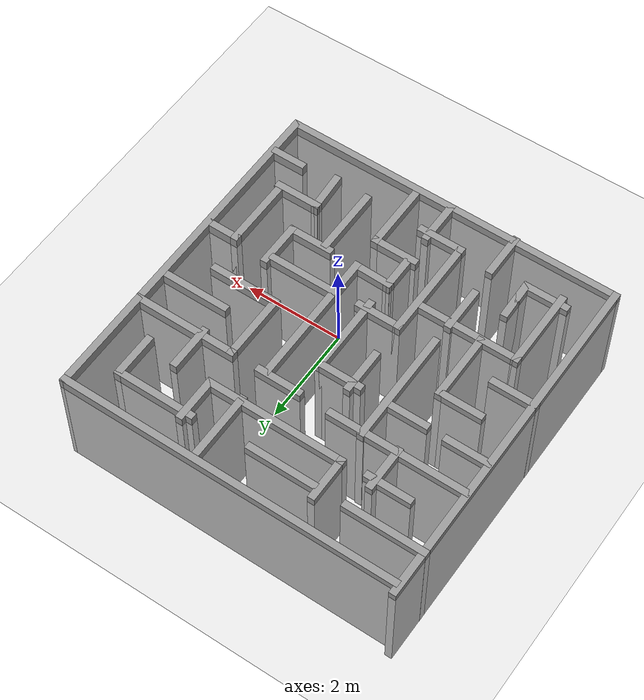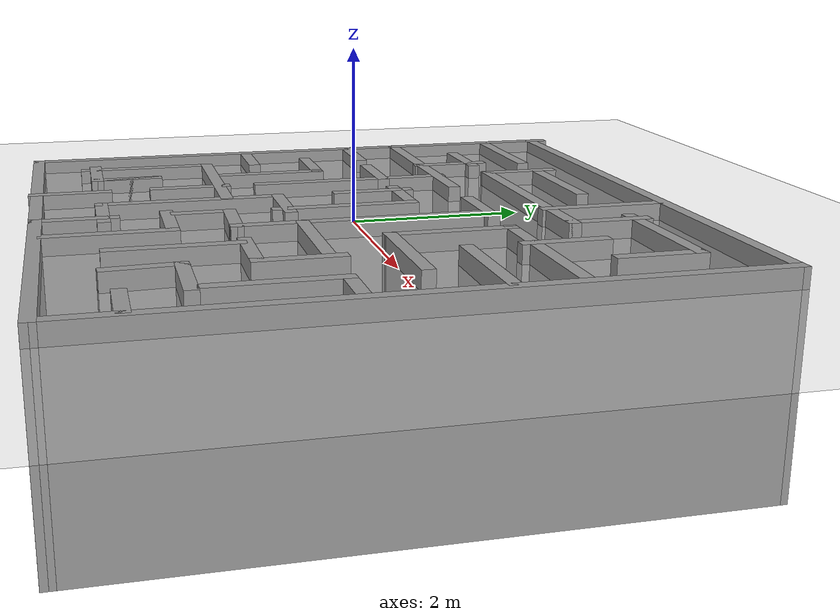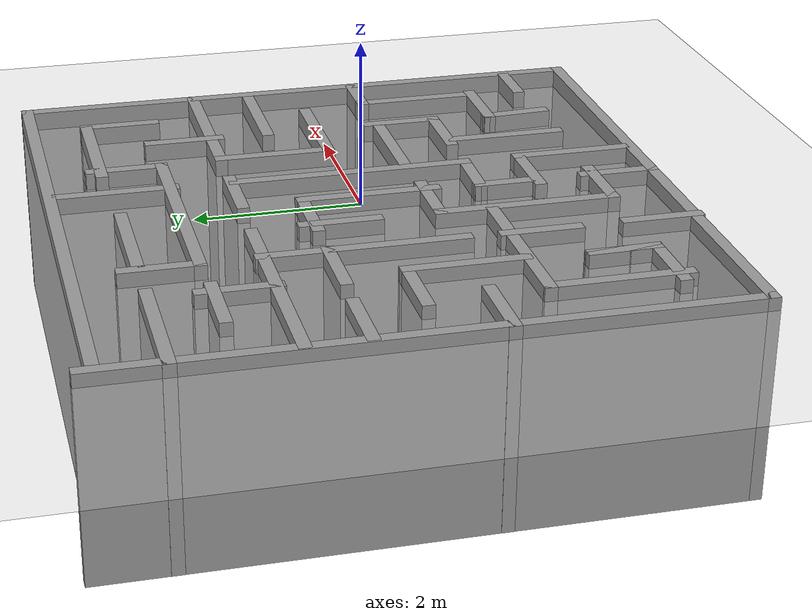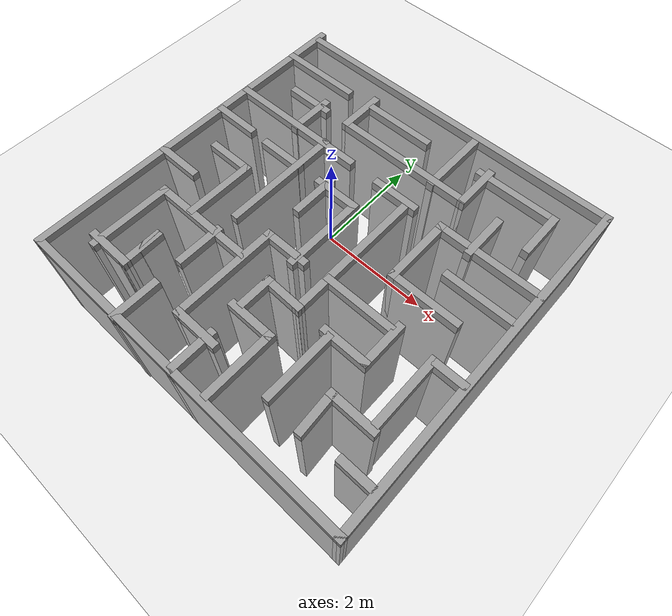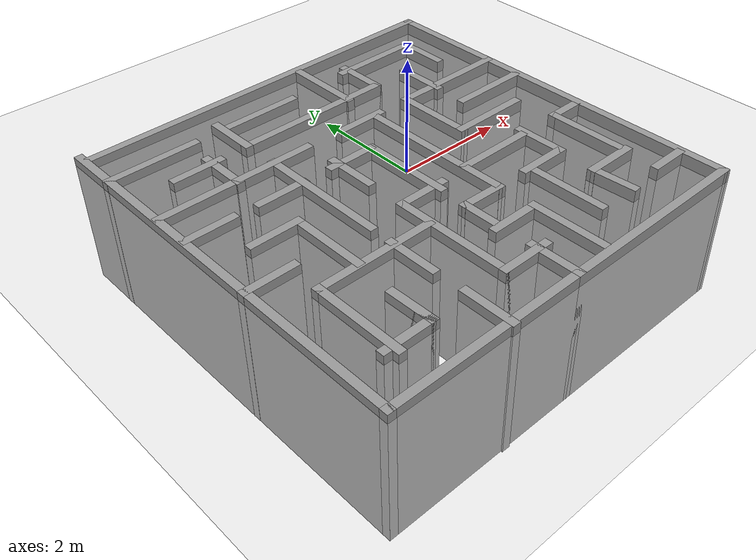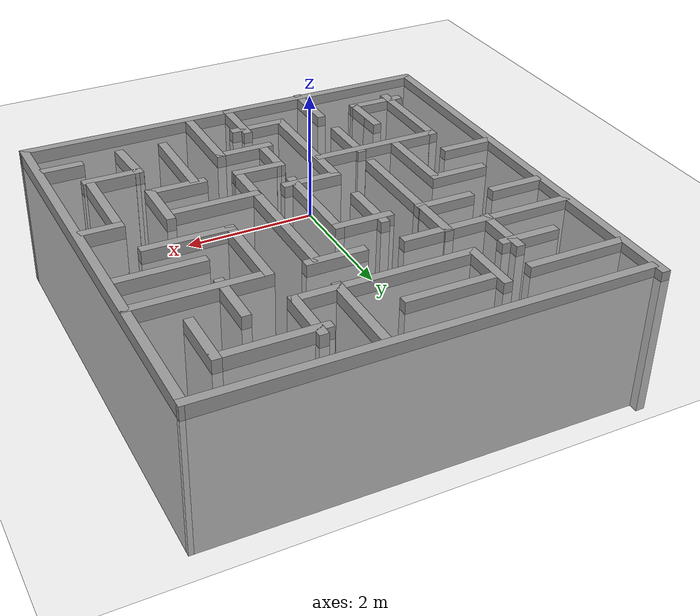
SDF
<sdf version="1.7">
 <world name="default">
  <scene><ambient>0.4 0.4 0.4 1</ambient><background>0.7 0.7 0.7 1</background><shadows>1</shadows></scene>
  <light name="sun" type="directional">
   <pose>0 0 10 0 -0 0</pose>
   <diffuse>0.8 0.8 0.8 1</diffuse>
   <specular>0.2 0.2 0.2 1</specular>
   <attenuation>
    <range>1000</range>
    <constant>0.9</constant>
    <linear>0.01</linear>
    <quadratic>0.001</quadratic>
   </attenuation>
   <direction>-0.5 0.1 -0.9</direction>
   <spot><inner_angle>0</inner_angle><outer_angle>0</outer_angle><falloff>0</falloff></spot>
  </light>
  <model name="ground_plane">
   <static>1</static>
   <link name="link">
    <collision name="collision">
     <geometry><plane><normal>0 0 1</normal><size>100 100</size></plane></geometry>
     <surface>
      <contact><collide_bitmask>65535</collide_bitmask></contact>
      <friction><ode><mu>100</mu><mu2>50</mu2></ode></friction>
     </surface>
    </collision>
    <visual name="visual">
     <cast_shadows>0</cast_shadows>
     <geometry><plane><normal>0 0 1</normal><size>100 100</size></plane></geometry>
     <material>
      <script><uri>file://media/materials/scripts/gazebo.material</uri><name>Gazebo/Grey</name></script>
     </material>
    </visual>
   </link>
  </model>
  <physics type="ode">
   <real_time_update_rate>1000</real_time_update_rate>
   <max_step_size>0.001</max_step_size>
   <real_time_factor>1</real_time_factor>
   <ode>
    <solver>
     <type>quick</type>
     <iters>150</iters>
     <precon_iters>0</precon_iters>
     <sor>1.4</sor>
     <use_dynamic_moi_rescaling>1</use_dynamic_moi_rescaling>
    </solver>
    <constraints>
     <cfm>1e-05</cfm>
     <erp>0.2</erp>
     <contact_max_correcting_vel>2000</contact_max_correcting_vel>
     <contact_surface_layer>0.01</contact_surface_layer>
    </constraints>
   </ode>
  </physics>
  <gravity>0 0 -9.8</gravity>
  <magnetic_field>6e-06 2.3e-05 -4.2e-05</magnetic_field>
  <atmosphere type="adiabatic"/>
  <spherical_coordinates>
   <surface_model>EARTH_WGS84</surface_model>
   <latitude_deg>0</latitude_deg>
   <longitude_deg>0</longitude_deg>
   <elevation>0</elevation>
   <heading_deg>0</heading_deg>
  </spherical_coordinates>
  <model name="Assignment1Maze">
   <pose>-0.09942 0.065663 -2.31895 0.000256 -0.009878 -3e-06</pose>
   <link name="Wall_1">
    <collision name="Wall_1_Collision">
     <geometry><box><size>3.75 0.15 2.5</size></box></geometry>
     <pose>0 0 1.25 0 -0 0</pose>
    </collision>
    <visual name="Wall_1_Visual">
     <pose>0 0 1.25 0 -0 0</pose>
     <geometry><box><size>3.75 0.15 2.5</size></box></geometry>
     <material>
      <script><uri>file://media/materials/scripts/gazebo.material</uri><name>Gazebo/Grey</name></script>
      <ambient>1 1 1 1</ambient>
     </material>
     <meta><layer>0</layer></meta>
    </visual>
    <pose>-1.79875 -3.66141 0 0 -0 0</pose>
   </link>
   <link name="Wall_100">
    <collision name="Wall_100_Collision">
     <geometry><box><size>1.5 0.15 2.5</size></box></geometry>
     <pose>0 0 1.25 0 -0 0</pose>
    </collision>
    <visual name="Wall_100_Visual">
     <pose>0 0 1.25 0 -0 0</pose>
     <geometry><box><size>1.5 0.15 2.5</size></box></geometry>
     <material>
      <script><uri>file://media/materials/scripts/gazebo.material</uri><name>Gazebo/Grey</name></script>
      <ambient>1 1 1 1</ambient>
     </material>
     <meta><layer>0</layer></meta>
    </visual>
    <pose>0.738134 -2.87955 0 0 -0 -1.5708</pose>
   </link>
   <link name="Wall_102">
    <collision name="Wall_102_Collision">
     <geometry><box><size>3.75 0.15 2.5</size></box></geometry>
     <pose>0 0 1.25 0 -0 0</pose>
    </collision>
    <visual name="Wall_102_Visual">
     <pose>0 0 1.25 0 -0 0</pose>
     <geometry><box><size>3.75 0.15 2.5</size></box></geometry>
     <material>
      <script><uri>file://media/materials/scripts/gazebo.material</uri><name>Gazebo/Grey</name></script>
      <ambient>1 1 1 1</ambient>
     </material>
     <meta><layer>0</layer></meta>
    </visual>
    <pose>1.80125 -3.66141 0 0 -0 0</pose>
   </link>
   <link name="Wall_104">
    <collision name="Wall_104_Collision">
     <geometry><box><size>7.35119 0.15 2.5</size></box></geometry>
     <pose>0 0 1.25 0 -0 0</pose>
    </collision>
    <visual name="Wall_104_Visual">
     <pose>0 0 1.25 0 -0 0</pose>
     <geometry><box><size>7.35119 0.15 2.5</size></box></geometry>
     <material>
      <script><uri>file://media/materials/scripts/gazebo.material</uri><name>Gazebo/Grey</name></script>
      <ambient>1 1 1 1</ambient>
     </material>
     <meta><layer>0</layer></meta>
    </visual>
    <pose>3.59261 -0.060829 0 0 -0 1.5732</pose>
   </link>
   <link name="Wall_106">
    <collision name="Wall_106_Collision">
     <geometry><box><size>2.25 0.15 2.5</size></box></geometry>
     <pose>0 0 1.25 0 -0 0</pose>
    </collision>
    <visual name="Wall_106_Visual">
     <pose>0 0 1.25 0 -0 0</pose>
     <geometry><box><size>2.25 0.15 2.5</size></box></geometry>
     <material>
      <script><uri>file://media/materials/scripts/gazebo.material</uri><name>Gazebo/Grey</name></script>
      <ambient>1 1 1 1</ambient>
     </material>
     <meta><layer>0</layer></meta>
    </visual>
    <pose>2.53038 1.37665 0 0 -0 3.14159</pose>
   </link>
   <link name="Wall_107">
    <collision name="Wall_107_Collision">
     <geometry><box><size>1.5 0.15 2.5</size></box></geometry>
     <pose>0 0 1.25 0 -0 0</pose>
    </collision>
    <visual name="Wall_107_Visual">
     <pose>0 0 1.25 0 -0 0</pose>
     <geometry><box><size>1.5 0.15 2.5</size></box></geometry>
     <material>
      <script><uri>file://media/materials/scripts/gazebo.material</uri><name>Gazebo/Grey</name></script>
      <ambient>1 1 1 1</ambient>
     </material>
     <meta><layer>0</layer></meta>
    </visual>
    <pose>1.48038 0.701651 0 0 -0 -1.5708</pose>
   </link>
   <link name="Wall_108">
    <collision name="Wall_108_Collision">
     <geometry><box><size>1.5 0.15 2.5</size></box></geometry>
     <pose>0 0 1.25 0 -0 0</pose>
    </collision>
    <visual name="Wall_108_Visual">
     <pose>0 0 1.25 0 -0 0</pose>
     <geometry><box><size>1.5 0.15 2.5</size></box></geometry>
     <material>
      <script><uri>file://media/materials/scripts/gazebo.material</uri><name>Gazebo/Grey</name></script>
      <ambient>1 1 1 1</ambient>
     </material>
     <meta><layer>0</layer></meta>
    </visual>
    <pose>2.15538 0.026651 0 0 -0 0</pose>
   </link>
   <link name="Wall_11">
    <collision name="Wall_11_Collision">
     <geometry><box><size>1 0.15 2.5</size></box></geometry>
     <pose>0 0 1.25 0 -0 0</pose>
    </collision>
    <visual name="Wall_11_Visual">
     <pose>0 0 1.25 0 -0 0</pose>
     <geometry><box><size>1 0.15 2.5</size></box></geometry>
     <material>
      <script><uri>file://media/materials/scripts/gazebo.material</uri><name>Gazebo/Grey</name></script>
      <ambient>1 1 1 1</ambient>
     </material>
     <meta><layer>0</layer></meta>
    </visual>
    <pose>-0.403311 0.663006 0 0 -0 3.14159</pose>
   </link>
   <link name="Wall_110">
    <collision name="Wall_110_Collision">
     <geometry><box><size>1.5 0.15 2.5</size></box></geometry>
     <pose>0 0 1.25 0 -0 0</pose>
    </collision>
    <visual name="Wall_110_Visual">
     <pose>0 0 1.25 0 -0 0</pose>
     <geometry><box><size>1.5 0.15 2.5</size></box></geometry>
     <material>
      <script><uri>file://media/materials/scripts/gazebo.material</uri><name>Gazebo/Grey</name></script>
      <ambient>1 1 1 1</ambient>
     </material>
     <meta><layer>0</layer></meta>
    </visual>
    <pose>2.84557 0.658445 0 0 -0 0</pose>
   </link>
   <link name="Wall_112">
    <collision name="Wall_112_Collision">
     <geometry><box><size>0.75 0.15 2.5</size></box></geometry>
     <pose>0 0 1.25 0 -0 0</pose>
    </collision>
    <visual name="Wall_112_Visual">
     <pose>0 0 1.25 0 -0 0</pose>
     <geometry><box><size>0.75 0.15 2.5</size></box></geometry>
     <material>
      <script><uri>file://media/materials/scripts/gazebo.material</uri><name>Gazebo/Grey</name></script>
      <ambient>1 1 1 1</ambient>
     </material>
     <meta><layer>0</layer></meta>
    </visual>
    <pose>3.22718 -2.87938 0 0 -0 3.14159</pose>
   </link>
   <link name="Wall_114">
    <collision name="Wall_114_Collision">
     <geometry><box><size>0.75 0.15 2.5</size></box></geometry>
     <pose>0 0 1.25 0 -0 0</pose>
    </collision>
    <visual name="Wall_114_Visual">
     <pose>0 0 1.25 0 -0 0</pose>
     <geometry><box><size>0.75 0.15 2.5</size></box></geometry>
     <material>
      <script><uri>file://media/materials/scripts/gazebo.material</uri><name>Gazebo/Grey</name></script>
      <ambient>1 1 1 1</ambient>
     </material>
     <meta><layer>0</layer></meta>
    </visual>
    <pose>3.24881 -0.759811 0 0 -0 3.14159</pose>
   </link>
   <link name="Wall_115">
    <collision name="Wall_115_Collision">
     <geometry><box><size>1.5 0.15 2.5</size></box></geometry>
     <pose>0 0 1.25 0 -0 0</pose>
    </collision>
    <visual name="Wall_115_Visual">
     <pose>0 0 1.25 0 -0 0</pose>
     <geometry><box><size>1.5 0.15 2.5</size></box></geometry>
     <material>
      <script><uri>file://media/materials/scripts/gazebo.material</uri><name>Gazebo/Grey</name></script>
      <ambient>1 1 1 1</ambient>
     </material>
     <meta><layer>0</layer></meta>
    </visual>
    <pose>2.94881 -1.43481 0 0 -0 -1.5708</pose>
   </link>
   <link name="Wall_117">
    <collision name="Wall_117_Collision">
     <geometry><box><size>1 0.15 2.5</size></box></geometry>
     <pose>0 0 1.25 0 -0 0</pose>
    </collision>
    <visual name="Wall_117_Visual">
     <pose>0 0 1.25 0 -0 0</pose>
     <geometry><box><size>1 0.15 2.5</size></box></geometry>
     <material>
      <script><uri>file://media/materials/scripts/gazebo.material</uri><name>Gazebo/Grey</name></script>
      <ambient>1 1 1 1</ambient>
     </material>
     <meta><layer>0</layer></meta>
    </visual>
    <pose>2.56284 -2.24017 0 0 -0 0</pose>
   </link>
   <link name="Wall_120">
    <collision name="Wall_120_Collision">
     <geometry><box><size>0.891624 0.15 2.5</size></box></geometry>
     <pose>0 0 1.25 0 -0 0</pose>
    </collision>
    <visual name="Wall_120_Visual">
     <pose>0 0 1.25 0 -0 0</pose>
     <geometry><box><size>0.891624 0.15 2.5</size></box></geometry>
     <material>
      <script><uri>file://media/materials/scripts/gazebo.material</uri><name>Gazebo/Grey</name></script>
      <ambient>1 1 1 1</ambient>
     </material>
     <meta><layer>0</layer></meta>
    </visual>
    <pose>2.16097 -2.61026 0 0 -0 1.63322</pose>
   </link>
   <link name="Wall_14">
    <collision name="Wall_14_Collision">
     <geometry><box><size>1 0.15 2.5</size></box></geometry>
     <pose>0 0 1.25 0 -0 0</pose>
    </collision>
    <visual name="Wall_14_Visual">
     <pose>0 0 1.25 0 -0 0</pose>
     <geometry><box><size>1 0.15 2.5</size></box></geometry>
     <material>
      <script><uri>file://media/materials/scripts/gazebo.material</uri><name>Gazebo/Grey</name></script>
      <ambient>1 1 1 1</ambient>
     </material>
     <meta><layer>0</layer></meta>
    </visual>
    <pose>-0.682286 0.363918 0 0 -0 1.5708</pose>
   </link>
   <link name="Wall_16">
    <collision name="Wall_16_Collision">
     <geometry><box><size>3 0.15 2.5</size></box></geometry>
     <pose>0 0 1.25 0 -0 0</pose>
    </collision>
    <visual name="Wall_16_Visual">
     <pose>0 0 1.25 0 -0 0</pose>
     <geometry><box><size>3 0.15 2.5</size></box></geometry>
     <material>
      <script><uri>file://media/materials/scripts/gazebo.material</uri><name>Gazebo/Grey</name></script>
      <ambient>1 1 1 1</ambient>
     </material>
     <meta><layer>0</layer></meta>
    </visual>
    <pose>-2.15364 1.40721 0 0 -0 0</pose>
   </link>
   <link name="Wall_19">
    <collision name="Wall_19_Collision">
     <geometry><box><size>2.5 0.15 2.5</size></box></geometry>
     <pose>0 0 1.25 0 -0 0</pose>
    </collision>
    <visual name="Wall_19_Visual">
     <pose>0 0 1.25 0 -0 0</pose>
     <geometry><box><size>2.5 0.15 2.5</size></box></geometry>
     <material>
      <script><uri>file://media/materials/scripts/gazebo.material</uri><name>Gazebo/Grey</name></script>
      <ambient>1 1 1 1</ambient>
     </material>
     <meta><layer>0</layer></meta>
    </visual>
    <pose>-1.41046 0.255061 0 0 -0 -1.5708</pose>
   </link>
   <link name="Wall_2">
    <collision name="Wall_2_Collision">
     <geometry><box><size>1 0.15 2.5</size></box></geometry>
     <pose>0 0 1.25 0 -0 0</pose>
    </collision>
    <visual name="Wall_2_Visual">
     <pose>0 0 1.25 0 -0 0</pose>
     <geometry><box><size>1 0.15 2.5</size></box></geometry>
     <material>
      <script><uri>file://media/materials/scripts/gazebo.material</uri><name>Gazebo/Grey</name></script>
      <ambient>1 1 1 1</ambient>
     </material>
     <meta><layer>0</layer></meta>
    </visual>
    <pose>0.001246 -3.23641 0 0 -0 1.5708</pose>
   </link>
   <link name="Wall_21">
    <collision name="Wall_21_Collision">
     <geometry><box><size>1 0.15 2.5</size></box></geometry>
     <pose>0 0 1.25 0 -0 0</pose>
    </collision>
    <visual name="Wall_21_Visual">
     <pose>0 0 1.25 0 -0 0</pose>
     <geometry><box><size>1 0.15 2.5</size></box></geometry>
     <material>
      <script><uri>file://media/materials/scripts/gazebo.material</uri><name>Gazebo/Grey</name></script>
      <ambient>1 1 1 1</ambient>
     </material>
     <meta><layer>0</layer></meta>
    </visual>
    <pose>-1.82396 0.671061 0 0 -0 3.14159</pose>
   </link>
   <link name="Wall_23">
    <collision name="Wall_23_Collision">
     <geometry><box><size>1 0.15 2.5</size></box></geometry>
     <pose>0 0 1.25 0 -0 0</pose>
    </collision>
    <visual name="Wall_23_Visual">
     <pose>0 0 1.25 0 -0 0</pose>
     <geometry><box><size>1 0.15 2.5</size></box></geometry>
     <material>
      <script><uri>file://media/materials/scripts/gazebo.material</uri><name>Gazebo/Grey</name></script>
      <ambient>1 1 1 1</ambient>
     </material>
     <meta><layer>0</layer></meta>
    </visual>
    <pose>-3.14746 0.694061 0 0 -0 0</pose>
   </link>
   <link name="Wall_25">
    <collision name="Wall_25_Collision">
     <geometry><box><size>7.5 0.15 2.5</size></box></geometry>
     <pose>0 0 1.25 0 -0 0</pose>
    </collision>
    <visual name="Wall_25_Visual">
     <pose>0 0 1.25 0 -0 0</pose>
     <geometry><box><size>7.5 0.15 2.5</size></box></geometry>
     <material>
      <script><uri>file://media/materials/scripts/gazebo.material</uri><name>Gazebo/Grey</name></script>
      <ambient>1 1 1 1</ambient>
     </material>
     <meta><layer>0</layer></meta>
    </visual>
    <pose>-3.59875 0.013588 0 0 -0 1.5708</pose>
   </link>
   <link name="Wall_29">
    <collision name="Wall_29_Collision">
     <geometry><box><size>7.25 0.15 2.5</size></box></geometry>
     <pose>0 0 1.25 0 -0 0</pose>
    </collision>
    <visual name="Wall_29_Visual">
     <pose>0 0 1.25 0 -0 0</pose>
     <geometry><box><size>7.25 0.15 2.5</size></box></geometry>
     <material>
      <script><uri>file://media/materials/scripts/gazebo.material</uri><name>Gazebo/Grey</name></script>
      <ambient>1 1 1 1</ambient>
     </material>
     <meta><layer>0</layer></meta>
    </visual>
    <pose>0.033968 3.53975 0 0 -0 3.14159</pose>
   </link>
   <link name="Wall_31">
    <collision name="Wall_31_Collision">
     <geometry><box><size>1 0.15 2.5</size></box></geometry>
     <pose>0 0 1.25 0 -0 0</pose>
    </collision>
    <visual name="Wall_31_Visual">
     <pose>0 0 1.25 0 -0 0</pose>
     <geometry><box><size>1 0.15 2.5</size></box></geometry>
     <material>
      <script><uri>file://media/materials/scripts/gazebo.material</uri><name>Gazebo/Grey</name></script>
      <ambient>1 1 1 1</ambient>
     </material>
     <meta><layer>0</layer></meta>
    </visual>
    <pose>-2.50808 -0.051272 0 0 -0 0</pose>
   </link>
   <link name="Wall_33">
    <collision name="Wall_33_Collision">
     <geometry><box><size>1.5 0.15 2.5</size></box></geometry>
     <pose>0 0 1.25 0 -0 0</pose>
    </collision>
    <visual name="Wall_33_Visual">
     <pose>0 0 1.25 0 -0 0</pose>
     <geometry><box><size>1.5 0.15 2.5</size></box></geometry>
     <material>
      <script><uri>file://media/materials/scripts/gazebo.material</uri><name>Gazebo/Grey</name></script>
      <ambient>1 1 1 1</ambient>
     </material>
     <meta><layer>0</layer></meta>
    </visual>
    <pose>-2.08308 -0.726272 0 0 -0 -1.5708</pose>
   </link>
   <link name="Wall_35">
    <collision name="Wall_35_Collision">
     <geometry><box><size>2.25 0.15 2.5</size></box></geometry>
     <pose>0 0 1.25 0 -0 0</pose>
    </collision>
    <visual name="Wall_35_Visual">
     <pose>0 0 1.25 0 -0 0</pose>
     <geometry><box><size>2.25 0.15 2.5</size></box></geometry>
     <material>
      <script><uri>file://media/materials/scripts/gazebo.material</uri><name>Gazebo/Grey</name></script>
      <ambient>1 1 1 1</ambient>
     </material>
     <meta><layer>0</layer></meta>
    </visual>
    <pose>-1.77668 -1.43448 0 0 -0 0</pose>
   </link>
   <link name="Wall_37">
    <collision name="Wall_37_Collision">
     <geometry><box><size>1.75 0.15 2.5</size></box></geometry>
     <pose>0 0 1.25 0 -0 0</pose>
    </collision>
    <visual name="Wall_37_Visual">
     <pose>0 0 1.25 0 -0 0</pose>
     <geometry><box><size>1.75 0.15 2.5</size></box></geometry>
     <material>
      <script><uri>file://media/materials/scripts/gazebo.material</uri><name>Gazebo/Grey</name></script>
      <ambient>1 1 1 1</ambient>
     </material>
     <meta><layer>0</layer></meta>
    </visual>
    <pose>-2.82668 -2.23448 0 0 -0 -1.5708</pose>
   </link>
   <link name="Wall_4">
    <collision name="Wall_4_Collision">
     <geometry><box><size>1 0.15 2.5</size></box></geometry>
     <pose>0 0 1.25 0 -0 0</pose>
    </collision>
    <visual name="Wall_4_Visual">
     <pose>0 0 1.25 0 -0 0</pose>
     <geometry><box><size>1 0.15 2.5</size></box></geometry>
     <material>
      <script><uri>file://media/materials/scripts/gazebo.material</uri><name>Gazebo/Grey</name></script>
      <ambient>1 1 1 1</ambient>
     </material>
     <meta><layer>0</layer></meta>
    </visual>
    <pose>-0.257286 -2.91721 0 0 -0 0</pose>
   </link>
   <link name="Wall_42">
    <collision name="Wall_42_Collision">
     <geometry><box><size>1 0.15 2.5</size></box></geometry>
     <pose>0 0 1.25 0 -0 0</pose>
    </collision>
    <visual name="Wall_42_Visual">
     <pose>0 0 1.25 0 -0 0</pose>
     <geometry><box><size>1 0.15 2.5</size></box></geometry>
     <material>
      <script><uri>file://media/materials/scripts/gazebo.material</uri><name>Gazebo/Grey</name></script>
      <ambient>1 1 1 1</ambient>
     </material>
     <meta><layer>0</layer></meta>
    </visual>
    <pose>-2.5525 -2.91633 0 0 -0 3.14159</pose>
   </link>
   <link name="Wall_44">
    <collision name="Wall_44_Collision">
     <geometry><box><size>0.895384 0.15 2.5</size></box></geometry>
     <pose>0 0 1.25 0 -0 0</pose>
    </collision>
    <visual name="Wall_44_Visual">
     <pose>0 0 1.25 0 -0 0</pose>
     <geometry><box><size>0.895384 0.15 2.5</size></box></geometry>
     <material>
      <script><uri>file://media/materials/scripts/gazebo.material</uri><name>Gazebo/Grey</name></script>
      <ambient>1 1 1 1</ambient>
     </material>
     <meta><layer>0</layer></meta>
    </visual>
    <pose>-2.1351 -2.54371 0 0 -0 -1.55039</pose>
   </link>
   <link name="Wall_45">
    <collision name="Wall_45_Collision">
     <geometry><box><size>0.895384 0.15 2.5</size></box></geometry>
     <pose>0 0 1.25 0 -0 0</pose>
    </collision>
    <visual name="Wall_45_Visual">
     <pose>0 0 1.25 0 -0 0</pose>
     <geometry><box><size>0.895384 0.15 2.5</size></box></geometry>
     <material>
      <script><uri>file://media/materials/scripts/gazebo.material</uri><name>Gazebo/Grey</name></script>
      <ambient>1 1 1 1</ambient>
     </material>
     <meta><layer>0</layer></meta>
    </visual>
    <pose>-2.1351 -2.54371 0 0 -0 1.5912</pose>
   </link>
   <link name="Wall_47">
    <collision name="Wall_47_Collision">
     <geometry><box><size>1 0.15 2.5</size></box></geometry>
     <pose>0 0 1.25 0 -0 0</pose>
    </collision>
    <visual name="Wall_47_Visual">
     <pose>0 0 1.25 0 -0 0</pose>
     <geometry><box><size>1 0.15 2.5</size></box></geometry>
     <material>
      <script><uri>file://media/materials/scripts/gazebo.material</uri><name>Gazebo/Grey</name></script>
      <ambient>1 1 1 1</ambient>
     </material>
     <meta><layer>0</layer></meta>
    </visual>
    <pose>-1.42699 -1.80053 0 0 -0 -1.5708</pose>
   </link>
   <link name="Wall_49">
    <collision name="Wall_49_Collision">
     <geometry><box><size>1 0.15 2.5</size></box></geometry>
     <pose>0 0 1.25 0 -0 0</pose>
    </collision>
    <visual name="Wall_49_Visual">
     <pose>0 0 1.25 0 -0 0</pose>
     <geometry><box><size>1 0.15 2.5</size></box></geometry>
     <material>
      <script><uri>file://media/materials/scripts/gazebo.material</uri><name>Gazebo/Grey</name></script>
      <ambient>1 1 1 1</ambient>
     </material>
     <meta><layer>0</layer></meta>
    </visual>
    <pose>-1.40386 -3.26359 0 0 -0 1.5708</pose>
   </link>
   <link name="Wall_51">
    <collision name="Wall_51_Collision">
     <geometry><box><size>1 0.15 2.5</size></box></geometry>
     <pose>0 0 1.25 0 -0 0</pose>
    </collision>
    <visual name="Wall_51_Visual">
     <pose>0 0 1.25 0 -0 0</pose>
     <geometry><box><size>1 0.15 2.5</size></box></geometry>
     <material>
      <script><uri>file://media/materials/scripts/gazebo.material</uri><name>Gazebo/Grey</name></script>
      <ambient>1 1 1 1</ambient>
     </material>
     <meta><layer>0</layer></meta>
    </visual>
    <pose>-3.17626 -0.797263 0 0 -0 0</pose>
   </link>
   <link name="Wall_53">
    <collision name="Wall_53_Collision">
     <geometry><box><size>1.75 0.15 2.5</size></box></geometry>
     <pose>0 0 1.25 0 -0 0</pose>
    </collision>
    <visual name="Wall_53_Visual">
     <pose>0 0 1.25 0 -0 0</pose>
     <geometry><box><size>1.75 0.15 2.5</size></box></geometry>
     <material>
      <script><uri>file://media/materials/scripts/gazebo.material</uri><name>Gazebo/Grey</name></script>
      <ambient>1 1 1 1</ambient>
     </material>
     <meta><layer>0</layer></meta>
    </visual>
    <pose>-2.80143 2.78843 0 0 -0 0</pose>
   </link>
   <link name="Wall_55">
    <collision name="Wall_55_Collision">
     <geometry><box><size>1 0.15 2.5</size></box></geometry>
     <pose>0 0 1.25 0 -0 0</pose>
    </collision>
    <visual name="Wall_55_Visual">
     <pose>0 0 1.25 0 -0 0</pose>
     <geometry><box><size>1 0.15 2.5</size></box></geometry>
     <material>
      <script><uri>file://media/materials/scripts/gazebo.material</uri><name>Gazebo/Grey</name></script>
      <ambient>1 1 1 1</ambient>
     </material>
     <meta><layer>0</layer></meta>
    </visual>
    <pose>-2.41167 2.08486 0 0 -0 0</pose>
   </link>
   <link name="Wall_57">
    <collision name="Wall_57_Collision">
     <geometry><box><size>1 0.15 2.5</size></box></geometry>
     <pose>0 0 1.25 0 -0 0</pose>
    </collision>
    <visual name="Wall_57_Visual">
     <pose>0 0 1.25 0 -0 0</pose>
     <geometry><box><size>1 0.15 2.5</size></box></geometry>
     <material>
      <script><uri>file://media/materials/scripts/gazebo.material</uri><name>Gazebo/Grey</name></script>
      <ambient>1 1 1 1</ambient>
     </material>
     <meta><layer>0</layer></meta>
    </visual>
    <pose>-2.13309 1.80628 0 0 -0 1.5708</pose>
   </link>
   <link name="Wall_59">
    <collision name="Wall_59_Collision">
     <geometry><box><size>1.5 0.15 2.5</size></box></geometry>
     <pose>0 0 1.25 0 -0 0</pose>
    </collision>
    <visual name="Wall_59_Visual">
     <pose>0 0 1.25 0 -0 0</pose>
     <geometry><box><size>1.5 0.15 2.5</size></box></geometry>
     <material>
      <script><uri>file://media/materials/scripts/gazebo.material</uri><name>Gazebo/Grey</name></script>
      <ambient>1 1 1 1</ambient>
     </material>
     <meta><layer>0</layer></meta>
    </visual>
    <pose>-0.636188 2.78843 0 0 -0 3.14159</pose>
   </link>
   <link name="Wall_6">
    <collision name="Wall_6_Collision">
     <geometry><box><size>2.25 0.15 2.5</size></box></geometry>
     <pose>0 0 1.25 0 -0 0</pose>
    </collision>
    <visual name="Wall_6_Visual">
     <pose>0 0 1.25 0 -0 0</pose>
     <geometry><box><size>2.25 0.15 2.5</size></box></geometry>
     <material>
      <script><uri>file://media/materials/scripts/gazebo.material</uri><name>Gazebo/Grey</name></script>
      <ambient>1 1 1 1</ambient>
     </material>
     <meta><layer>0</layer></meta>
    </visual>
    <pose>-0.682286 -1.86721 0 0 -0 1.5708</pose>
   </link>
   <link name="Wall_61">
    <collision name="Wall_61_Collision">
     <geometry><box><size>1 0.15 2.5</size></box></geometry>
     <pose>0 0 1.25 0 -0 0</pose>
    </collision>
    <visual name="Wall_61_Visual">
     <pose>0 0 1.25 0 -0 0</pose>
     <geometry><box><size>1 0.15 2.5</size></box></geometry>
     <material>
      <script><uri>file://media/materials/scripts/gazebo.material</uri><name>Gazebo/Grey</name></script>
      <ambient>1 1 1 1</ambient>
     </material>
     <meta><layer>0</layer></meta>
    </visual>
    <pose>-1.42952 2.54045 0 0 -0 1.5708</pose>
   </link>
   <link name="Wall_63">
    <collision name="Wall_63_Collision">
     <geometry><box><size>3 0.15 2.5</size></box></geometry>
     <pose>0 0 1.25 0 -0 0</pose>
    </collision>
    <visual name="Wall_63_Visual">
     <pose>0 0 1.25 0 -0 0</pose>
     <geometry><box><size>3 0.15 2.5</size></box></geometry>
     <material>
      <script><uri>file://media/materials/scripts/gazebo.material</uri><name>Gazebo/Grey</name></script>
      <ambient>1 1 1 1</ambient>
     </material>
     <meta><layer>0</layer></meta>
    </visual>
    <pose>-0.004519 2.11545 0 0 -0 0</pose>
   </link>
   <link name="Wall_64">
    <collision name="Wall_64_Collision">
     <geometry><box><size>1 0.15 2.5</size></box></geometry>
     <pose>0 0 1.25 0 -0 0</pose>
    </collision>
    <visual name="Wall_64_Visual">
     <pose>0 0 1.25 0 -0 0</pose>
     <geometry><box><size>1 0.15 2.5</size></box></geometry>
     <material>
      <script><uri>file://media/materials/scripts/gazebo.material</uri><name>Gazebo/Grey</name></script>
      <ambient>1 1 1 1</ambient>
     </material>
     <meta><layer>0</layer></meta>
    </visual>
    <pose>1.42048 2.54045 0 0 -0 1.5708</pose>
   </link>
   <link name="Wall_68">
    <collision name="Wall_68_Collision">
     <geometry><box><size>1.75 0.15 2.5</size></box></geometry>
     <pose>0 0 1.25 0 -0 0</pose>
    </collision>
    <visual name="Wall_68_Visual">
     <pose>0 0 1.25 0 -0 0</pose>
     <geometry><box><size>1.75 0.15 2.5</size></box></geometry>
     <material>
      <script><uri>file://media/materials/scripts/gazebo.material</uri><name>Gazebo/Grey</name></script>
      <ambient>1 1 1 1</ambient>
     </material>
     <meta><layer>0</layer></meta>
    </visual>
    <pose>2.08551 2.86055 0 0 -0 3.14159</pose>
   </link>
   <link name="Wall_7">
    <collision name="Wall_7_Collision">
     <geometry><box><size>1 0.15 2.5</size></box></geometry>
     <pose>0 0 1.25 0 -0 0</pose>
    </collision>
    <visual name="Wall_7_Visual">
     <pose>0 0 1.25 0 -0 0</pose>
     <geometry><box><size>1 0.15 2.5</size></box></geometry>
     <material>
      <script><uri>file://media/materials/scripts/gazebo.material</uri><name>Gazebo/Grey</name></script>
      <ambient>1 1 1 1</ambient>
     </material>
     <meta><layer>0</layer></meta>
    </visual>
    <pose>-0.257286 -0.817209 0 0 -0 0</pose>
   </link>
   <link name="Wall_70">
    <collision name="Wall_70_Collision">
     <geometry><box><size>1 0.15 2.5</size></box></geometry>
     <pose>0 0 1.25 0 -0 0</pose>
    </collision>
    <visual name="Wall_70_Visual">
     <pose>0 0 1.25 0 -0 0</pose>
     <geometry><box><size>1 0.15 2.5</size></box></geometry>
     <material>
      <script><uri>file://media/materials/scripts/gazebo.material</uri><name>Gazebo/Grey</name></script>
      <ambient>1 1 1 1</ambient>
     </material>
     <meta><layer>0</layer></meta>
    </visual>
    <pose>2.88551 2.43555 0 0 -0 -1.5708</pose>
   </link>
   <link name="Wall_72">
    <collision name="Wall_72_Collision">
     <geometry><box><size>1 0.15 2.5</size></box></geometry>
     <pose>0 0 1.25 0 -0 0</pose>
    </collision>
    <visual name="Wall_72_Visual">
     <pose>0 0 1.25 0 -0 0</pose>
     <geometry><box><size>1 0.15 2.5</size></box></geometry>
     <material>
      <script><uri>file://media/materials/scripts/gazebo.material</uri><name>Gazebo/Grey</name></script>
      <ambient>1 1 1 1</ambient>
     </material>
     <meta><layer>0</layer></meta>
    </visual>
    <pose>2.16846 1.7185 0 0 -0 -1.5708</pose>
   </link>
   <link name="Wall_74">
    <collision name="Wall_74_Collision">
     <geometry><box><size>1 0.15 2.5</size></box></geometry>
     <pose>0 0 1.25 0 -0 0</pose>
    </collision>
    <visual name="Wall_74_Visual">
     <pose>0 0 1.25 0 -0 0</pose>
     <geometry><box><size>1 0.15 2.5</size></box></geometry>
     <material>
      <script><uri>file://media/materials/scripts/gazebo.material</uri><name>Gazebo/Grey</name></script>
      <ambient>1 1 1 1</ambient>
     </material>
     <meta><layer>0</layer></meta>
    </visual>
    <pose>0.419188 1.38019 0 0 -0 0</pose>
   </link>
   <link name="Wall_77">
    <collision name="Wall_77_Collision">
     <geometry><box><size>1.5 0.15 2.5</size></box></geometry>
     <pose>0 0 1.25 0 -0 0</pose>
    </collision>
    <visual name="Wall_77_Visual">
     <pose>0 0 1.25 0 -0 0</pose>
     <geometry><box><size>1.5 0.15 2.5</size></box></geometry>
     <material>
      <script><uri>file://media/materials/scripts/gazebo.material</uri><name>Gazebo/Grey</name></script>
      <ambient>1 1 1 1</ambient>
     </material>
     <meta><layer>0</layer></meta>
    </visual>
    <pose>0.737224 2.75196 0 0 -0 1.5708</pose>
   </link>
   <link name="Wall_81">
    <collision name="Wall_81_Collision">
     <geometry><box><size>3 0.15 2.5</size></box></geometry>
     <pose>0 0 1.25 0 -0 0</pose>
    </collision>
    <visual name="Wall_81_Visual">
     <pose>0 0 1.25 0 -0 0</pose>
     <geometry><box><size>3 0.15 2.5</size></box></geometry>
     <material>
      <script><uri>file://media/materials/scripts/gazebo.material</uri><name>Gazebo/Grey</name></script>
      <ambient>1 1 1 1</ambient>
     </material>
     <meta><layer>0</layer></meta>
    </visual>
    <pose>0.715061 -0.086546 0 0 -0 1.5708</pose>
   </link>
   <link name="Wall_83">
    <collision name="Wall_83_Collision">
     <geometry><box><size>1.5 0.15 2.5</size></box></geometry>
     <pose>0 0 1.25 0 -0 0</pose>
    </collision>
    <visual name="Wall_83_Visual">
     <pose>0 0 1.25 0 -0 0</pose>
     <geometry><box><size>1.5 0.15 2.5</size></box></geometry>
     <material>
      <script><uri>file://media/materials/scripts/gazebo.material</uri><name>Gazebo/Grey</name></script>
      <ambient>1 1 1 1</ambient>
     </material>
     <meta><layer>0</layer></meta>
    </visual>
    <pose>1.40755 -0.776963 0 0 -0 0</pose>
   </link>
   <link name="Wall_85">
    <collision name="Wall_85_Collision">
     <geometry><box><size>1 0.15 2.5</size></box></geometry>
     <pose>0 0 1.25 0 -0 0</pose>
    </collision>
    <visual name="Wall_85_Visual">
     <pose>0 0 1.25 0 -0 0</pose>
     <geometry><box><size>1 0.15 2.5</size></box></geometry>
     <material>
      <script><uri>file://media/materials/scripts/gazebo.material</uri><name>Gazebo/Grey</name></script>
      <ambient>1 1 1 1</ambient>
     </material>
     <meta><layer>0</layer></meta>
    </visual>
    <pose>2.18423 -1.08655 0 0 -0 1.5708</pose>
   </link>
   <link name="Wall_87">
    <collision name="Wall_87_Collision">
     <geometry><box><size>1 0.15 2.5</size></box></geometry>
     <pose>0 0 1.25 0 -0 0</pose>
    </collision>
    <visual name="Wall_87_Visual">
     <pose>0 0 1.25 0 -0 0</pose>
     <geometry><box><size>1 0.15 2.5</size></box></geometry>
     <material>
      <script><uri>file://media/materials/scripts/gazebo.material</uri><name>Gazebo/Grey</name></script>
      <ambient>1 1 1 1</ambient>
     </material>
     <meta><layer>0</layer></meta>
    </visual>
    <pose>1.75923 -1.51155 0 0 -0 3.14159</pose>
   </link>
   <link name="Wall_9">
    <collision name="Wall_9_Collision">
     <geometry><box><size>1.75 0.15 2.5</size></box></geometry>
     <pose>0 0 1.25 0 -0 0</pose>
    </collision>
    <visual name="Wall_9_Visual">
     <pose>0 0 1.25 0 -0 0</pose>
     <geometry><box><size>1.75 0.15 2.5</size></box></geometry>
     <material>
      <script><uri>file://media/materials/scripts/gazebo.material</uri><name>Gazebo/Grey</name></script>
      <ambient>1 1 1 1</ambient>
     </material>
     <meta><layer>0</layer></meta>
    </visual>
    <pose>0.021689 -0.136994 0 0 -0 -1.5708</pose>
   </link>
   <link name="Wall_90">
    <collision name="Wall_90_Collision">
     <geometry><box><size>1.5 0.15 2.5</size></box></geometry>
     <pose>0 0 1.25 0 -0 0</pose>
    </collision>
    <visual name="Wall_90_Visual">
     <pose>0 0 1.25 0 -0 0</pose>
     <geometry><box><size>1.5 0.15 2.5</size></box></geometry>
     <material>
      <script><uri>file://media/materials/scripts/gazebo.material</uri><name>Gazebo/Grey</name></script>
      <ambient>1 1 1 1</ambient>
     </material>
     <meta><layer>0</layer></meta>
    </visual>
    <pose>1.44964 -2.25324 0 0 -0 1.5708</pose>
   </link>
   <link name="Wall_92">
    <collision name="Wall_92_Collision">
     <geometry><box><size>0.876492 0.15 2.5</size></box></geometry>
     <pose>0 0 1.25 0 -0 0</pose>
    </collision>
    <visual name="Wall_92_Visual">
     <pose>0 0 1.25 0 -0 0</pose>
     <geometry><box><size>0.876492 0.15 2.5</size></box></geometry>
     <material>
      <script><uri>file://media/materials/scripts/gazebo.material</uri><name>Gazebo/Grey</name></script>
      <ambient>1 1 1 1</ambient>
     </material>
     <meta><layer>0</layer></meta>
    </visual>
    <pose>0.35195 -1.50165 0 0 -0 -0.027238</pose>
   </link>
   <link name="Wall_94">
    <collision name="Wall_94_Collision">
     <geometry><box><size>0.75 0.15 2.5</size></box></geometry>
     <pose>0 0 1.25 0 -0 0</pose>
    </collision>
    <visual name="Wall_94_Visual">
     <pose>0 0 1.25 0 -0 0</pose>
     <geometry><box><size>0.75 0.15 2.5</size></box></geometry>
     <material>
      <script><uri>file://media/materials/scripts/gazebo.material</uri><name>Gazebo/Grey</name></script>
      <ambient>1 1 1 1</ambient>
     </material>
     <meta><layer>0</layer></meta>
    </visual>
    <pose>-0.011161 -1.79176 0 0 -0 -1.5708</pose>
   </link>
   <link name="Wall_98">
    <collision name="Wall_98_Collision">
     <geometry><box><size>1 0.15 2.5</size></box></geometry>
     <pose>0 0 1.25 0 -0 0</pose>
    </collision>
    <visual name="Wall_98_Visual">
     <pose>0 0 1.25 0 -0 0</pose>
     <geometry><box><size>1 0.15 2.5</size></box></geometry>
     <material>
      <script><uri>file://media/materials/scripts/gazebo.material</uri><name>Gazebo/Grey</name></script>
      <ambient>1 1 1 1</ambient>
     </material>
     <meta><layer>0</layer></meta>
    </visual>
    <pose>0.313134 -2.20455 0 0 -0 3.14159</pose>
   </link>
   <static>1</static>
  </model>
 </world>
</sdf>
